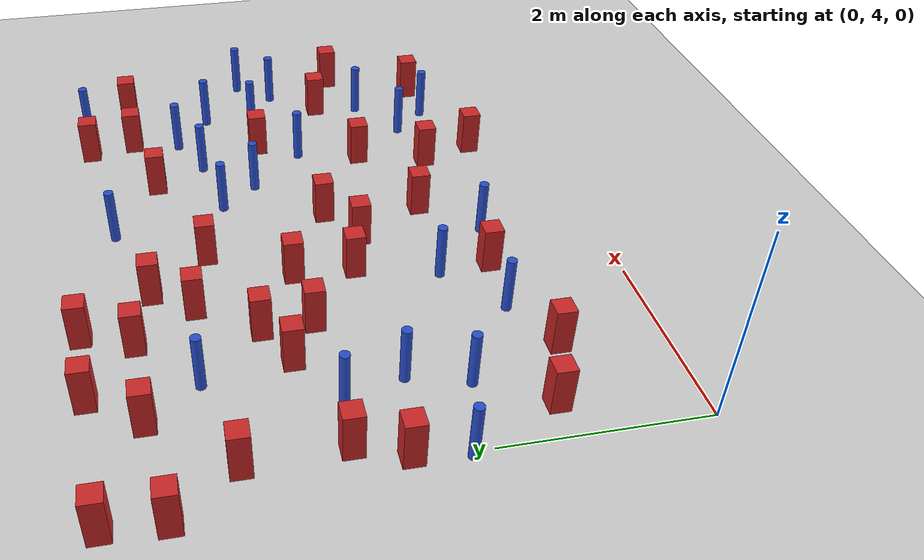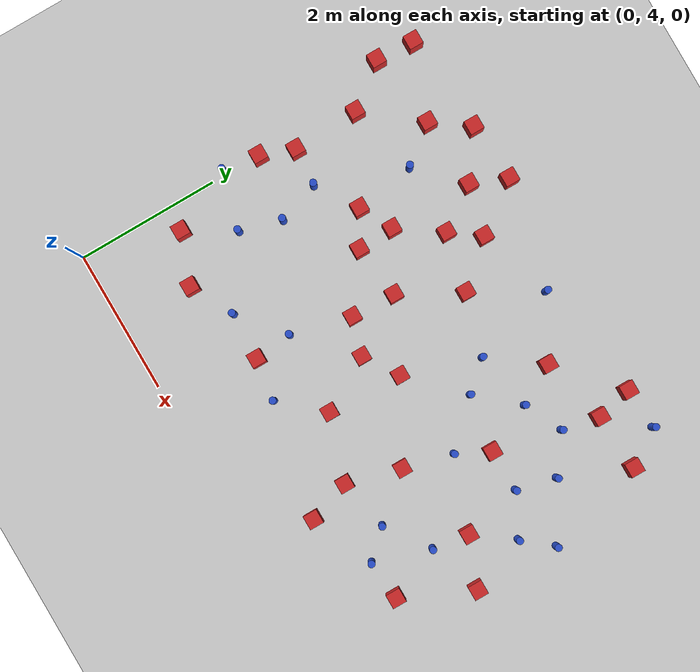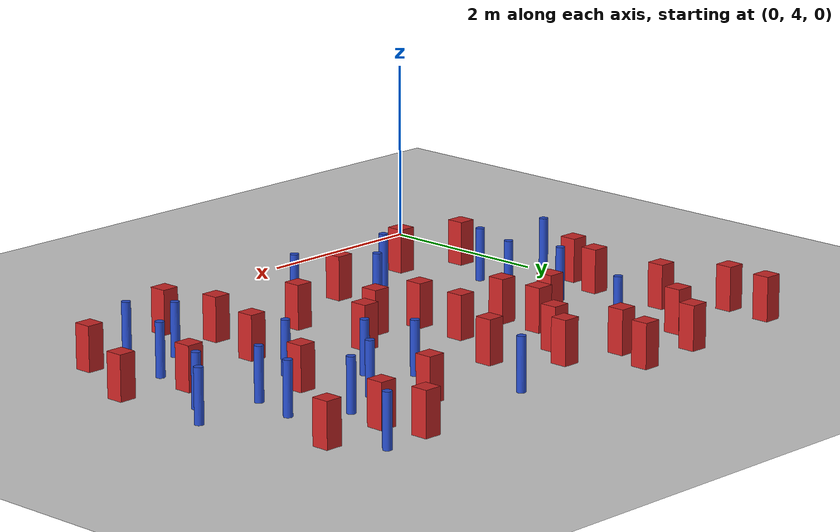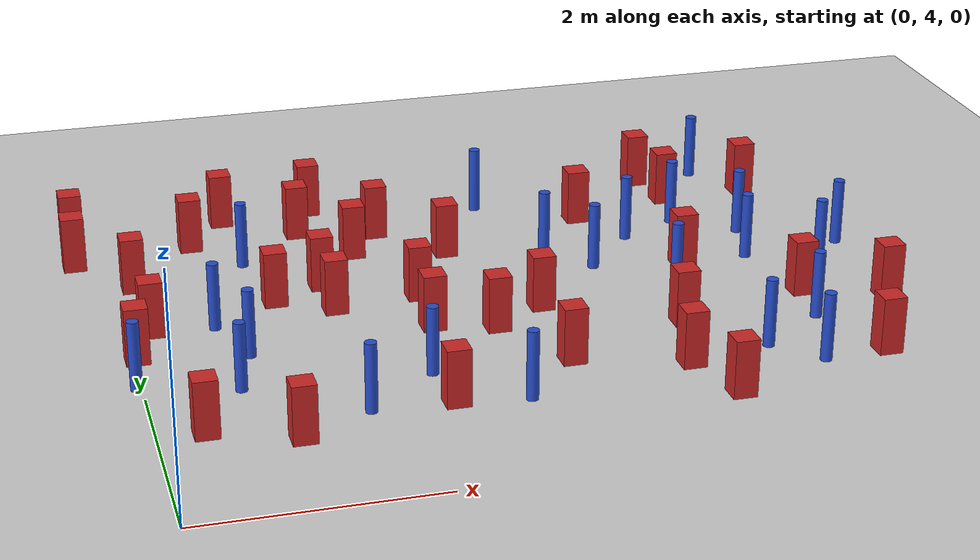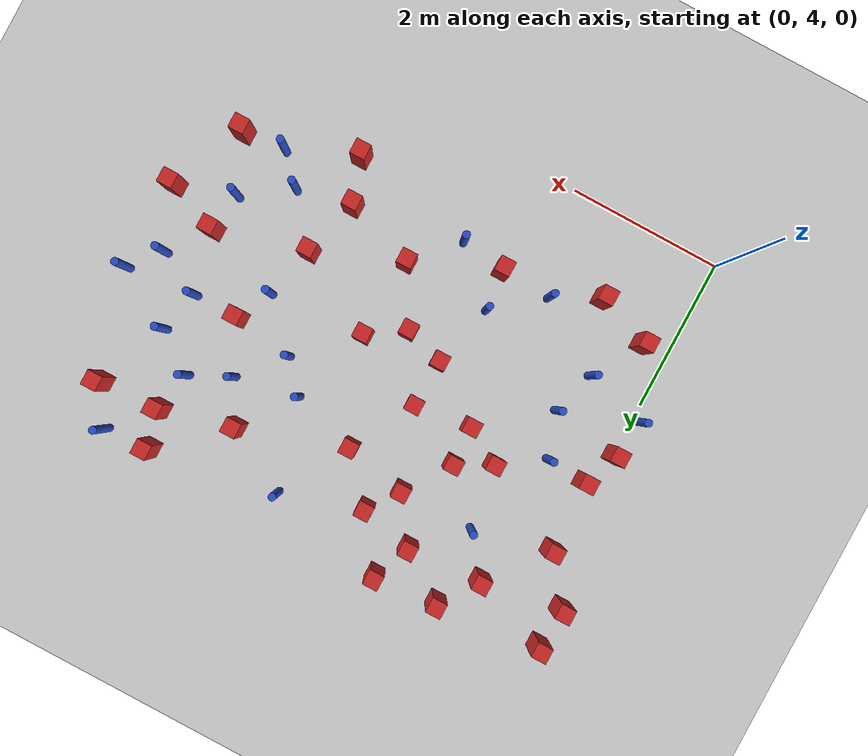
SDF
<sdf version="1.6">
 <world name="default">
  <model name="ground_plane">
   <static>1</static>
   <link name="link">
    <collision name="collision">
     <geometry><plane><normal>0 0 1</normal><size>100 100</size></plane></geometry>
     <surface><friction><ode><mu>100</mu><mu2>50</mu2></ode></friction></surface>
    </collision>
    <visual name="visual">
     <cast_shadows>0</cast_shadows>
     <geometry><plane><normal>0 0 1</normal><size>100 100</size></plane></geometry>
     <material>
      <ambient>1.0 1.0 1.0 1.0</ambient>
      <diffuse>0.8 0.8 0.8 1.0</diffuse>
      <specular>0.01 0.01 0.01 1.000000</specular>
     </material>
    </visual>
   </link>
  </model>
  <model name="square_post_obstacle0">
   <static>true</static>
   <pose>0.162283778039 8.10898161146 8.22691968438e-08 7.22125133819e-06 -7.54495500217e-07 2.29674213826e-05</pose>
   <link name="link">
    <pose>0 0 0.25 0 -0 0</pose>
    <inertial>
     <mass>100</mass>
     <inertia>
      <ixx>0.166667</ixx>
      <ixy>0</ixy>
      <ixz>0</ixz>
      <iyy>0.166667</iyy>
      <iyz>0</iyz>
      <izz>0.166667</izz>
     </inertia>
    </inertial>
    <collision name="collision"><geometry><box><size>.2 .2 .5</size></box></geometry></collision>
    <visual name="visual">
     <geometry><box><size>.2 .2 .5</size></box></geometry>
     <material>
      <script><name>Gazebo/Red</name><uri>file://media/materials/scripts/gazebo.material</uri></script>
     </material>
    </visual>
   </link>
  </model>
  <model name="pole_obstacle7">
   <static>true</static>
   <pose>0.757397420686 5.97443957552 2.88873142074e-08 -9.90536689661e-09 4.60219948993e-07 -1.20965994957e-07</pose>
   <link name="link">
    <pose>0 0 0.3 0 -0 0</pose>
    <inertial>
     <mass>1</mass>
     <inertia><ixx>0.145833</ixx><ixy>0</ixy><ixz>0</ixz><iyy>0.145833</iyy><iyz>0</iyz><izz>0.125</izz></inertia>
    </inertial>
    <collision name="collision">
     <geometry><cylinder><radius>0.05</radius><length>.6</length></cylinder></geometry>
    </collision>
    <visual name="visual">
     <geometry><cylinder><radius>0.05</radius><length>.6</length></cylinder></geometry>
     <material>
      <script><name>Gazebo/Blue</name><uri>file://media/materials/scripts/gazebo.material</uri></script>
     </material>
    </visual>
   </link>
  </model>
  <model name="square_post_obstacle20">
   <static>true</static>
   <pose>-0.256552599961 9.23690297356 8.22691968438e-08 7.22125133819e-06 -7.54495500217e-07 2.29674213826e-05</pose>
   <link name="link">
    <pose>0 0 0.25 0 -0 0</pose>
    <inertial>
     <mass>100</mass>
     <inertia>
      <ixx>0.166667</ixx>
      <ixy>0</ixy>
      <ixz>0</ixz>
      <iyy>0.166667</iyy>
      <iyz>0</iyz>
      <izz>0.166667</izz>
     </inertia>
    </inertial>
    <collision name="collision"><geometry><box><size>.2 .2 .5</size></box></geometry></collision>
    <visual name="visual">
     <geometry><box><size>.2 .2 .5</size></box></geometry>
     <material>
      <script><name>Gazebo/Red</name><uri>file://media/materials/scripts/gazebo.material</uri></script>
     </material>
    </visual>
   </link>
  </model>
  <model name="square_post_obstacle26">
   <static>true</static>
   <pose>0.76789544619 8.86330595334 8.22691968438e-08 7.22125133819e-06 -7.54495500217e-07 2.29674213826e-05</pose>
   <link name="link">
    <pose>0 0 0.25 0 -0 0</pose>
    <inertial>
     <mass>100</mass>
     <inertia>
      <ixx>0.166667</ixx>
      <ixy>0</ixy>
      <ixz>0</ixz>
      <iyy>0.166667</iyy>
      <iyz>0</iyz>
      <izz>0.166667</izz>
     </inertia>
    </inertial>
    <collision name="collision"><geometry><box><size>.2 .2 .5</size></box></geometry></collision>
    <visual name="visual">
     <geometry><box><size>.2 .2 .5</size></box></geometry>
     <material>
      <script><name>Gazebo/Red</name><uri>file://media/materials/scripts/gazebo.material</uri></script>
     </material>
    </visual>
   </link>
  </model>
  <model name="square_post_obstacle29">
   <static>true</static>
   <pose>3.4853978365 6.86225372079 8.22691968438e-08 7.2212513382e-06 -7.54495500217e-07 2.29674213826e-05</pose>
   <link name="link">
    <pose>0 0 0.25 0 -0 0</pose>
    <inertial>
     <mass>100</mass>
     <inertia>
      <ixx>0.166667</ixx>
      <ixy>0</ixy>
      <ixz>0</ixz>
      <iyy>0.166667</iyy>
      <iyz>0</iyz>
      <izz>0.166667</izz>
     </inertia>
    </inertial>
    <collision name="collision"><geometry><box><size>.2 .2 .5</size></box></geometry></collision>
    <visual name="visual">
     <geometry><box><size>.2 .2 .5</size></box></geometry>
     <material>
      <script><name>Gazebo/Red</name><uri>file://media/materials/scripts/gazebo.material</uri></script>
     </material>
    </visual>
   </link>
  </model>
  <model name="pole_obstacle22">
   <static>true</static>
   <pose>6.48088616461 7.51556487156 2.88873142074e-08 -9.90536690842e-09 4.60219948965e-07 -1.20965994976e-07</pose>
   <link name="link">
    <pose>0 0 0.3 0 -0 0</pose>
    <inertial>
     <mass>1</mass>
     <inertia><ixx>0.145833</ixx><ixy>0</ixy><ixz>0</ixz><iyy>0.145833</iyy><iyz>0</iyz><izz>0.125</izz></inertia>
    </inertial>
    <collision name="collision">
     <geometry><cylinder><radius>0.05</radius><length>.6</length></cylinder></geometry>
    </collision>
    <visual name="visual">
     <geometry><cylinder><radius>0.05</radius><length>.6</length></cylinder></geometry>
     <material>
      <script><name>Gazebo/Blue</name><uri>file://media/materials/scripts/gazebo.material</uri></script>
     </material>
    </visual>
   </link>
  </model>
  <model name="pole_obstacle30">
   <static>true</static>
   <pose>4.65475010527 8.09014497869 2.88873142074e-08 -9.9053668967e-09 4.60219948993e-07 -1.20965994957e-07</pose>
   <link name="link">
    <pose>0 0 0.3 0 -0 0</pose>
    <inertial>
     <mass>1</mass>
     <inertia><ixx>0.145833</ixx><ixy>0</ixy><ixz>0</ixz><iyy>0.145833</iyy><iyz>0</iyz><izz>0.125</izz></inertia>
    </inertial>
    <collision name="collision">
     <geometry><cylinder><radius>0.05</radius><length>.6</length></cylinder></geometry>
    </collision>
    <visual name="visual">
     <geometry><cylinder><radius>0.05</radius><length>.6</length></cylinder></geometry>
     <material>
      <script><name>Gazebo/Blue</name><uri>file://media/materials/scripts/gazebo.material</uri></script>
     </material>
    </visual>
   </link>
  </model>
  <model name="square_post_obstacle41">
   <static>true</static>
   <pose>1.12259798906 9.3645433566 8.22691968438e-08 7.22125133819e-06 -7.54495500217e-07 2.29674213826e-05</pose>
   <link name="link">
    <pose>0 0 0.25 0 -0 0</pose>
    <inertial>
     <mass>100</mass>
     <inertia>
      <ixx>0.166667</ixx>
      <ixy>0</ixy>
      <ixz>0</ixz>
      <iyy>0.166667</iyy>
      <iyz>0</iyz>
      <izz>0.166667</izz>
     </inertia>
    </inertial>
    <collision name="collision"><geometry><box><size>.2 .2 .5</size></box></geometry></collision>
    <visual name="visual">
     <geometry><box><size>.2 .2 .5</size></box></geometry>
     <material>
      <script><name>Gazebo/Red</name><uri>file://media/materials/scripts/gazebo.material</uri></script>
     </material>
    </visual>
   </link>
  </model>
  <model name="pole_obstacle46">
   <static>true</static>
   <pose>3.82761383308 7.92443435613 2.88873142074e-08 -9.90536689859e-09 4.60219948989e-07 -1.20965994961e-07</pose>
   <link name="link">
    <pose>0 0 0.3 0 -0 0</pose>
    <inertial>
     <mass>1</mass>
     <inertia><ixx>0.145833</ixx><ixy>0</ixy><ixz>0</ixz><iyy>0.145833</iyy><iyz>0</iyz><izz>0.125</izz></inertia>
    </inertial>
    <collision name="collision">
     <geometry><cylinder><radius>0.05</radius><length>.6</length></cylinder></geometry>
    </collision>
    <visual name="visual">
     <geometry><cylinder><radius>0.05</radius><length>.6</length></cylinder></geometry>
     <material>
      <script><name>Gazebo/Blue</name><uri>file://media/materials/scripts/gazebo.material</uri></script>
     </material>
    </visual>
   </link>
  </model>
  <model name="pole_obstacle47">
   <static>true</static>
   <pose>0.727925221609 7.14160179303 2.88873142074e-08 -9.90536689661e-09 4.60219948993e-07 -1.20965994957e-07</pose>
   <link name="link">
    <pose>0 0 0.3 0 -0 0</pose>
    <inertial>
     <mass>1</mass>
     <inertia><ixx>0.145833</ixx><ixy>0</ixy><ixz>0</ixz><iyy>0.145833</iyy><iyz>0</iyz><izz>0.125</izz></inertia>
    </inertial>
    <collision name="collision">
     <geometry><cylinder><radius>0.05</radius><length>.6</length></cylinder></geometry>
    </collision>
    <visual name="visual">
     <geometry><cylinder><radius>0.05</radius><length>.6</length></cylinder></geometry>
     <material>
      <script><name>Gazebo/Blue</name><uri>file://media/materials/scripts/gazebo.material</uri></script>
     </material>
    </visual>
   </link>
  </model>
  <model name="pole_obstacle50">
   <static>true</static>
   <pose>5.4336771689 5.29448988219 2.88873142074e-08 -9.90536690842e-09 4.60219948965e-07 -1.20965994976e-07</pose>
   <link name="link">
    <pose>0 0 0.3 0 -0 0</pose>
    <inertial>
     <mass>1</mass>
     <inertia><ixx>0.145833</ixx><ixy>0</ixy><ixz>0</ixz><iyy>0.145833</iyy><iyz>0</iyz><izz>0.125</izz></inertia>
    </inertial>
    <collision name="collision">
     <geometry><cylinder><radius>0.05</radius><length>.6</length></cylinder></geometry>
    </collision>
    <visual name="visual">
     <geometry><cylinder><radius>0.05</radius><length>.6</length></cylinder></geometry>
     <material>
      <script><name>Gazebo/Blue</name><uri>file://media/materials/scripts/gazebo.material</uri></script>
     </material>
    </visual>
   </link>
  </model>
  <model name="pole_obstacle51">
   <static>true</static>
   <pose>1.16322253048 8.36214663829 2.88873142074e-08 -9.90536690474e-09 4.60219948974e-07 -1.2096599497e-07</pose>
   <link name="link">
    <pose>0 0 0.3 0 -0 0</pose>
    <inertial>
     <mass>1</mass>
     <inertia><ixx>0.145833</ixx><ixy>0</ixy><ixz>0</ixz><iyy>0.145833</iyy><iyz>0</iyz><izz>0.125</izz></inertia>
    </inertial>
    <collision name="collision">
     <geometry><cylinder><radius>0.05</radius><length>.6</length></cylinder></geometry>
    </collision>
    <visual name="visual">
     <geometry><cylinder><radius>0.05</radius><length>.6</length></cylinder></geometry>
     <material>
      <script><name>Gazebo/Blue</name><uri>file://media/materials/scripts/gazebo.material</uri></script>
     </material>
    </visual>
   </link>
  </model>
  <model name="pole_obstacle52">
   <static>true</static>
   <pose>5.18245828493 8.34725905334 2.88873142074e-08 -9.9053668967e-09 4.60219948993e-07 -1.20965994957e-07</pose>
   <link name="link">
    <pose>0 0 0.3 0 -0 0</pose>
    <inertial>
     <mass>1</mass>
     <inertia><ixx>0.145833</ixx><ixy>0</ixy><ixz>0</ixz><iyy>0.145833</iyy><iyz>0</iyz><izz>0.125</izz></inertia>
    </inertial>
    <collision name="collision">
     <geometry><cylinder><radius>0.05</radius><length>.6</length></cylinder></geometry>
    </collision>
    <visual name="visual">
     <geometry><cylinder><radius>0.05</radius><length>.6</length></cylinder></geometry>
     <material>
      <script><name>Gazebo/Blue</name><uri>file://media/materials/scripts/gazebo.material</uri></script>
     </material>
    </visual>
   </link>
  </model>
  <model name="square_post_obstacle61">
   <static>true</static>
   <pose>1.95289120962 9.42673131361 8.22691968438e-08 7.22125133819e-06 -7.54495500217e-07 2.29674213826e-05</pose>
   <link name="link">
    <pose>0 0 0.25 0 -0 0</pose>
    <inertial>
     <mass>100</mass>
     <inertia>
      <ixx>0.166667</ixx>
      <ixy>0</ixy>
      <ixz>0</ixz>
      <iyy>0.166667</iyy>
      <iyz>0</iyz>
      <izz>0.166667</izz>
     </inertia>
    </inertial>
    <collision name="collision"><geometry><box><size>.2 .2 .5</size></box></geometry></collision>
    <visual name="visual">
     <geometry><box><size>.2 .2 .5</size></box></geometry>
     <material>
      <script><name>Gazebo/Red</name><uri>file://media/materials/scripts/gazebo.material</uri></script>
     </material>
    </visual>
   </link>
  </model>
  <model name="pole_obstacle58">
   <static>true</static>
   <pose>-0.0435866531859 6.19796773189 2.88873142074e-08 -9.90536689643e-09 4.60219948994e-07 -1.20965994959e-07</pose>
   <link name="link">
    <pose>0 0 0.3 0 -0 0</pose>
    <inertial>
     <mass>1</mass>
     <inertia><ixx>0.145833</ixx><ixy>0</ixy><ixz>0</ixz><iyy>0.145833</iyy><iyz>0</iyz><izz>0.125</izz></inertia>
    </inertial>
    <collision name="collision">
     <geometry><cylinder><radius>0.05</radius><length>.6</length></cylinder></geometry>
    </collision>
    <visual name="visual">
     <geometry><cylinder><radius>0.05</radius><length>.6</length></cylinder></geometry>
     <material>
      <script><name>Gazebo/Blue</name><uri>file://media/materials/scripts/gazebo.material</uri></script>
     </material>
    </visual>
   </link>
  </model>
  <model name="square_post_obstacle63">
   <static>true</static>
   <pose>4.56235906794 6.27100671486 8.22691968438e-08 7.2212513382e-06 -7.54495500217e-07 2.29674213826e-05</pose>
   <link name="link">
    <pose>0 0 0.25 0 -0 0</pose>
    <inertial>
     <mass>100</mass>
     <inertia>
      <ixx>0.166667</ixx>
      <ixy>0</ixy>
      <ixz>0</ixz>
      <iyy>0.166667</iyy>
      <iyz>0</iyz>
      <izz>0.166667</izz>
     </inertia>
    </inertial>
    <collision name="collision"><geometry><box><size>.2 .2 .5</size></box></geometry></collision>
    <visual name="visual">
     <geometry><box><size>.2 .2 .5</size></box></geometry>
     <material>
      <script><name>Gazebo/Red</name><uri>file://media/materials/scripts/gazebo.material</uri></script>
     </material>
    </visual>
   </link>
  </model>
  <model name="square_post_obstacle72">
   <static>true</static>
   <pose>0.376257577092 5.31938980522 8.22691968438e-08 7.22125133819e-06 -7.54495500217e-07 2.29674213826e-05</pose>
   <link name="link">
    <pose>0 0 0.25 0 -0 0</pose>
    <inertial>
     <mass>100</mass>
     <inertia>
      <ixx>0.166667</ixx>
      <ixy>0</ixy>
      <ixz>0</ixz>
      <iyy>0.166667</iyy>
      <iyz>0</iyz>
      <izz>0.166667</izz>
     </inertia>
    </inertial>
    <collision name="collision"><geometry><box><size>.2 .2 .5</size></box></geometry></collision>
    <visual name="visual">
     <geometry><box><size>.2 .2 .5</size></box></geometry>
     <material>
      <script><name>Gazebo/Red</name><uri>file://media/materials/scripts/gazebo.material</uri></script>
     </material>
    </visual>
   </link>
  </model>
  <model name="pole_obstacle71">
   <static>true</static>
   <pose>4.74041068815 6.95792141472 2.88873142074e-08 -9.90536690842e-09 4.60219948965e-07 -1.20965994976e-07</pose>
   <link name="link">
    <pose>0 0 0.3 0 -0 0</pose>
    <inertial>
     <mass>1</mass>
     <inertia><ixx>0.145833</ixx><ixy>0</ixy><ixz>0</ixz><iyy>0.145833</iyy><iyz>0</iyz><izz>0.125</izz></inertia>
    </inertial>
    <collision name="collision">
     <geometry><cylinder><radius>0.05</radius><length>.6</length></cylinder></geometry>
    </collision>
    <visual name="visual">
     <geometry><cylinder><radius>0.05</radius><length>.6</length></cylinder></geometry>
     <material>
      <script><name>Gazebo/Blue</name><uri>file://media/materials/scripts/gazebo.material</uri></script>
     </material>
    </visual>
   </link>
  </model>
  <model name="pole_obstacle77">
   <static>true</static>
   <pose>5.75945326988 9.41431579659 2.88873142074e-08 -9.9053668967e-09 4.60219948993e-07 -1.20965994957e-07</pose>
   <link name="link">
    <pose>0 0 0.3 0 -0 0</pose>
    <inertial>
     <mass>1</mass>
     <inertia><ixx>0.145833</ixx><ixy>0</ixy><ixz>0</ixz><iyy>0.145833</iyy><iyz>0</iyz><izz>0.125</izz></inertia>
    </inertial>
    <collision name="collision">
     <geometry><cylinder><radius>0.05</radius><length>.6</length></cylinder></geometry>
    </collision>
    <visual name="visual">
     <geometry><cylinder><radius>0.05</radius><length>.6</length></cylinder></geometry>
     <material>
      <script><name>Gazebo/Blue</name><uri>file://media/materials/scripts/gazebo.material</uri></script>
     </material>
    </visual>
   </link>
  </model>
  <model name="square_post_obstacle77">
   <static>true</static>
   <pose>2.96867325076 8.17074979924 8.22691968438e-08 7.22125133819e-06 -7.54495500217e-07 2.29674213826e-05</pose>
   <link name="link">
    <pose>0 0 0.25 0 -0 0</pose>
    <inertial>
     <mass>100</mass>
     <inertia>
      <ixx>0.166667</ixx>
      <ixy>0</ixy>
      <ixz>0</ixz>
      <iyy>0.166667</iyy>
      <iyz>0</iyz>
      <izz>0.166667</izz>
     </inertia>
    </inertial>
    <collision name="collision"><geometry><box><size>.2 .2 .5</size></box></geometry></collision>
    <visual name="visual">
     <geometry><box><size>.2 .2 .5</size></box></geometry>
     <material>
      <script><name>Gazebo/Red</name><uri>file://media/materials/scripts/gazebo.material</uri></script>
     </material>
    </visual>
   </link>
  </model>
  <model name="pole_obstacle83">
   <static>true</static>
   <pose>2.28597338293 5.86817106889 2.88873142074e-08 -9.90536689859e-09 4.60219948989e-07 -1.20965994961e-07</pose>
   <link name="link">
    <pose>0 0 0.3 0 -0 0</pose>
    <inertial>
     <mass>1</mass>
     <inertia><ixx>0.145833</ixx><ixy>0</ixy><ixz>0</ixz><iyy>0.145833</iyy><iyz>0</iyz><izz>0.125</izz></inertia>
    </inertial>
    <collision name="collision">
     <geometry><cylinder><radius>0.05</radius><length>.6</length></cylinder></geometry>
    </collision>
    <visual name="visual">
     <geometry><cylinder><radius>0.05</radius><length>.6</length></cylinder></geometry>
     <material>
      <script><name>Gazebo/Blue</name><uri>file://media/materials/scripts/gazebo.material</uri></script>
     </material>
    </visual>
   </link>
  </model>
  <model name="square_post_obstacle81">
   <static>true</static>
   <pose>1.07721218713 5.05495801115 8.22691968438e-08 7.2212513382e-06 -7.54495500217e-07 2.29674213826e-05</pose>
   <link name="link">
    <pose>0 0 0.25 0 -0 0</pose>
    <inertial>
     <mass>100</mass>
     <inertia>
      <ixx>0.166667</ixx>
      <ixy>0</ixy>
      <ixz>0</ixz>
      <iyy>0.166667</iyy>
      <iyz>0</iyz>
      <izz>0.166667</izz>
     </inertia>
    </inertial>
    <collision name="collision"><geometry><box><size>.2 .2 .5</size></box></geometry></collision>
    <visual name="visual">
     <geometry><box><size>.2 .2 .5</size></box></geometry>
     <material>
      <script><name>Gazebo/Red</name><uri>file://media/materials/scripts/gazebo.material</uri></script>
     </material>
    </visual>
   </link>
  </model>
  <model name="pole_obstacle90">
   <static>true</static>
   <pose>2.93490335544 5.24682398478 2.88873142074e-08 -9.90536689859e-09 4.60219948989e-07 -1.20965994961e-07</pose>
   <link name="link">
    <pose>0 0 0.3 0 -0 0</pose>
    <inertial>
     <mass>1</mass>
     <inertia><ixx>0.145833</ixx><ixy>0</ixy><ixz>0</ixz><iyy>0.145833</iyy><iyz>0</iyz><izz>0.125</izz></inertia>
    </inertial>
    <collision name="collision">
     <geometry><cylinder><radius>0.05</radius><length>.6</length></cylinder></geometry>
    </collision>
    <visual name="visual">
     <geometry><cylinder><radius>0.05</radius><length>.6</length></cylinder></geometry>
     <material>
      <script><name>Gazebo/Blue</name><uri>file://media/materials/scripts/gazebo.material</uri></script>
     </material>
    </visual>
   </link>
  </model>
  <model name="square_post_obstacle94">
   <static>true</static>
   <pose>0.201381671887 7.17721379972 8.22691968438e-08 7.2212513382e-06 -7.54495500217e-07 2.29674213826e-05</pose>
   <link name="link">
    <pose>0 0 0.25 0 -0 0</pose>
    <inertial>
     <mass>100</mass>
     <inertia>
      <ixx>0.166667</ixx>
      <ixy>0</ixy>
      <ixz>0</ixz>
      <iyy>0.166667</iyy>
      <iyz>0</iyz>
      <izz>0.166667</izz>
     </inertia>
    </inertial>
    <collision name="collision"><geometry><box><size>.2 .2 .5</size></box></geometry></collision>
    <visual name="visual">
     <geometry><box><size>.2 .2 .5</size></box></geometry>
     <material>
      <script><name>Gazebo/Red</name><uri>file://media/materials/scripts/gazebo.material</uri></script>
     </material>
    </visual>
   </link>
  </model>
  <model name="pole_obstacle107">
   <static>true</static>
   <pose>5.56460161546 7.4199643332 2.88873142074e-08 -9.90536690842e-09 4.60219948965e-07 -1.20965994976e-07</pose>
   <link name="link">
    <pose>0 0 0.3 0 -0 0</pose>
    <inertial>
     <mass>1</mass>
     <inertia><ixx>0.145833</ixx><ixy>0</ixy><ixz>0</ixz><iyy>0.145833</iyy><iyz>0</iyz><izz>0.125</izz></inertia>
    </inertial>
    <collision name="collision">
     <geometry><cylinder><radius>0.05</radius><length>.6</length></cylinder></geometry>
    </collision>
    <visual name="visual">
     <geometry><cylinder><radius>0.05</radius><length>.6</length></cylinder></geometry>
     <material>
      <script><name>Gazebo/Blue</name><uri>file://media/materials/scripts/gazebo.material</uri></script>
     </material>
    </visual>
   </link>
  </model>
  <model name="pole_obstacle110">
   <static>true</static>
   <pose>5.08272865546 5.66126780666 2.88873142074e-08 -9.90536690842e-09 4.60219948965e-07 -1.20965994976e-07</pose>
   <link name="link">
    <pose>0 0 0.3 0 -0 0</pose>
    <inertial>
     <mass>1</mass>
     <inertia><ixx>0.145833</ixx><ixy>0</ixy><ixz>0</ixz><iyy>0.145833</iyy><iyz>0</iyz><izz>0.125</izz></inertia>
    </inertial>
    <collision name="collision">
     <geometry><cylinder><radius>0.05</radius><length>.6</length></cylinder></geometry>
    </collision>
    <visual name="visual">
     <geometry><cylinder><radius>0.05</radius><length>.6</length></cylinder></geometry>
     <material>
      <script><name>Gazebo/Blue</name><uri>file://media/materials/scripts/gazebo.material</uri></script>
     </material>
    </visual>
   </link>
  </model>
  <model name="pole_obstacle111">
   <static>true</static>
   <pose>4.17322458663 7.5391584807 2.88873142074e-08 -9.90536690842e-09 4.60219948965e-07 -1.20965994976e-07</pose>
   <link name="link">
    <pose>0 0 0.3 0 -0 0</pose>
    <inertial>
     <mass>1</mass>
     <inertia><ixx>0.145833</ixx><ixy>0</ixy><ixz>0</ixz><iyy>0.145833</iyy><iyz>0</iyz><izz>0.125</izz></inertia>
    </inertial>
    <collision name="collision">
     <geometry><cylinder><radius>0.05</radius><length>.6</length></cylinder></geometry>
    </collision>
    <visual name="visual">
     <geometry><cylinder><radius>0.05</radius><length>.6</length></cylinder></geometry>
     <material>
      <script><name>Gazebo/Blue</name><uri>file://media/materials/scripts/gazebo.material</uri></script>
     </material>
    </visual>
   </link>
  </model>
  <model name="square_post_obstacle110">
   <static>true</static>
   <pose>-0.287319377816 8.69593210698 8.22691968438e-08 7.22125133819e-06 -7.54495500217e-07 2.29674213826e-05</pose>
   <link name="link">
    <pose>0 0 0.25 0 -0 0</pose>
    <inertial>
     <mass>100</mass>
     <inertia>
      <ixx>0.166667</ixx>
      <ixy>0</ixy>
      <ixz>0</ixz>
      <iyy>0.166667</iyy>
      <iyz>0</iyz>
      <izz>0.166667</izz>
     </inertia>
    </inertial>
    <collision name="collision"><geometry><box><size>.2 .2 .5</size></box></geometry></collision>
    <visual name="visual">
     <geometry><box><size>.2 .2 .5</size></box></geometry>
     <material>
      <script><name>Gazebo/Red</name><uri>file://media/materials/scripts/gazebo.material</uri></script>
     </material>
    </visual>
   </link>
  </model>
  <model name="pole_obstacle129">
   <static>true</static>
   <pose>3.49523625838 9.10108350606 2.88873142074e-08 -9.90536692318e-09 4.6021994893e-07 -1.20965994988e-07</pose>
   <link name="link">
    <pose>0 0 0.3 0 -0 0</pose>
    <inertial>
     <mass>1</mass>
     <inertia><ixx>0.145833</ixx><ixy>0</ixy><ixz>0</ixz><iyy>0.145833</iyy><iyz>0</iyz><izz>0.125</izz></inertia>
    </inertial>
    <collision name="collision">
     <geometry><cylinder><radius>0.05</radius><length>.6</length></cylinder></geometry>
    </collision>
    <visual name="visual">
     <geometry><cylinder><radius>0.05</radius><length>.6</length></cylinder></geometry>
     <material>
      <script><name>Gazebo/Blue</name><uri>file://media/materials/scripts/gazebo.material</uri></script>
     </material>
    </visual>
   </link>
  </model>
  <model name="pole_obstacle130">
   <static>true</static>
   <pose>0.924134991183 6.5564778335 2.88873142074e-08 -9.90536689661e-09 4.60219948993e-07 -1.20965994957e-07</pose>
   <link name="link">
    <pose>0 0 0.3 0 -0 0</pose>
    <inertial>
     <mass>1</mass>
     <inertia><ixx>0.145833</ixx><ixy>0</ixy><ixz>0</ixz><iyy>0.145833</iyy><iyz>0</iyz><izz>0.125</izz></inertia>
    </inertial>
    <collision name="collision">
     <geometry><cylinder><radius>0.05</radius><length>.6</length></cylinder></geometry>
    </collision>
    <visual name="visual">
     <geometry><cylinder><radius>0.05</radius><length>.6</length></cylinder></geometry>
     <material>
      <script><name>Gazebo/Blue</name><uri>file://media/materials/scripts/gazebo.material</uri></script>
     </material>
    </visual>
   </link>
  </model>
  <model name="pole_obstacle142">
   <static>true</static>
   <pose>6.1491749764 7.12307590394 2.88873142074e-08 -9.90536690842e-09 4.60219948965e-07 -1.20965994976e-07</pose>
   <link name="link">
    <pose>0 0 0.3 0 -0 0</pose>
    <inertial>
     <mass>1</mass>
     <inertia><ixx>0.145833</ixx><ixy>0</ixy><ixz>0</ixz><iyy>0.145833</iyy><iyz>0</iyz><izz>0.125</izz></inertia>
    </inertial>
    <collision name="collision">
     <geometry><cylinder><radius>0.05</radius><length>.6</length></cylinder></geometry>
    </collision>
    <visual name="visual">
     <geometry><cylinder><radius>0.05</radius><length>.6</length></cylinder></geometry>
     <material>
      <script><name>Gazebo/Blue</name><uri>file://media/materials/scripts/gazebo.material</uri></script>
     </material>
    </visual>
   </link>
  </model>
  <model name="square_post_obstacle130">
   <static>true</static>
   <pose>5.16857802847 9.36602999264 8.22691968438e-08 7.22125133819e-06 -7.54495500217e-07 2.29674213826e-05</pose>
   <link name="link">
    <pose>0 0 0.25 0 -0 0</pose>
    <inertial>
     <mass>100</mass>
     <inertia>
      <ixx>0.166667</ixx>
      <ixy>0</ixy>
      <ixz>0</ixz>
      <iyy>0.166667</iyy>
      <iyz>0</iyz>
      <izz>0.166667</izz>
     </inertia>
    </inertial>
    <collision name="collision"><geometry><box><size>.2 .2 .5</size></box></geometry></collision>
    <visual name="visual">
     <geometry><box><size>.2 .2 .5</size></box></geometry>
     <material>
      <script><name>Gazebo/Red</name><uri>file://media/materials/scripts/gazebo.material</uri></script>
     </material>
    </visual>
   </link>
  </model>
  <model name="square_post_obstacle132">
   <static>true</static>
   <pose>5.75273140875 6.59350425713 8.22691968438e-08 7.2212513382e-06 -7.54495500217e-07 2.29674213826e-05</pose>
   <link name="link">
    <pose>0 0 0.25 0 -0 0</pose>
    <inertial>
     <mass>100</mass>
     <inertia>
      <ixx>0.166667</ixx>
      <ixy>0</ixy>
      <ixz>0</ixz>
      <iyy>0.166667</iyy>
      <iyz>0</iyz>
      <izz>0.166667</izz>
     </inertia>
    </inertial>
    <collision name="collision"><geometry><box><size>.2 .2 .5</size></box></geometry></collision>
    <visual name="visual">
     <geometry><box><size>.2 .2 .5</size></box></geometry>
     <material>
      <script><name>Gazebo/Red</name><uri>file://media/materials/scripts/gazebo.material</uri></script>
     </material>
    </visual>
   </link>
  </model>
  <model name="square_post_obstacle134">
   <static>true</static>
   <pose>2.15692500746 8.34528364637 8.22691968438e-08 7.22125133819e-06 -7.54495500217e-07 2.29674213826e-05</pose>
   <link name="link">
    <pose>0 0 0.25 0 -0 0</pose>
    <inertial>
     <mass>100</mass>
     <inertia>
      <ixx>0.166667</ixx>
      <ixy>0</ixy>
      <ixz>0</ixz>
      <iyy>0.166667</iyy>
      <iyz>0</iyz>
      <izz>0.166667</izz>
     </inertia>
    </inertial>
    <collision name="collision"><geometry><box><size>.2 .2 .5</size></box></geometry></collision>
    <visual name="visual">
     <geometry><box><size>.2 .2 .5</size></box></geometry>
     <material>
      <script><name>Gazebo/Red</name><uri>file://media/materials/scripts/gazebo.material</uri></script>
     </material>
    </visual>
   </link>
  </model>
  <model name="pole_obstacle147">
   <static>true</static>
   <pose>5.69948448596 7.97343137087 2.88873142074e-08 -9.90536689847e-09 4.60219948989e-07 -1.2096599496e-07</pose>
   <link name="link">
    <pose>0 0 0.3 0 -0 0</pose>
    <inertial>
     <mass>1</mass>
     <inertia><ixx>0.145833</ixx><ixy>0</ixy><ixz>0</ixz><iyy>0.145833</iyy><iyz>0</iyz><izz>0.125</izz></inertia>
    </inertial>
    <collision name="collision">
     <geometry><cylinder><radius>0.05</radius><length>.6</length></cylinder></geometry>
    </collision>
    <visual name="visual">
     <geometry><cylinder><radius>0.05</radius><length>.6</length></cylinder></geometry>
     <material>
      <script><name>Gazebo/Blue</name><uri>file://media/materials/scripts/gazebo.material</uri></script>
     </material>
    </visual>
   </link>
  </model>
  <model name="square_post_obstacle143">
   <static>true</static>
   <pose>2.51779781376 7.33294909263 8.22691968438e-08 7.2212513382e-06 -7.54495500217e-07 2.29674213826e-05</pose>
   <link name="link">
    <pose>0 0 0.25 0 -0 0</pose>
    <inertial>
     <mass>100</mass>
     <inertia>
      <ixx>0.166667</ixx>
      <ixy>0</ixy>
      <ixz>0</ixz>
      <iyy>0.166667</iyy>
      <iyz>0</iyz>
      <izz>0.166667</izz>
     </inertia>
    </inertial>
    <collision name="collision"><geometry><box><size>.2 .2 .5</size></box></geometry></collision>
    <visual name="visual">
     <geometry><box><size>.2 .2 .5</size></box></geometry>
     <material>
      <script><name>Gazebo/Red</name><uri>file://media/materials/scripts/gazebo.material</uri></script>
     </material>
    </visual>
   </link>
  </model>
  <model name="square_post_obstacle147">
   <static>true</static>
   <pose>1.30060799335 7.51262026973 8.22691968438e-08 7.2212513382e-06 -7.54495500217e-07 2.29674213826e-05</pose>
   <link name="link">
    <pose>0 0 0.25 0 -0 0</pose>
    <inertial>
     <mass>100</mass>
     <inertia>
      <ixx>0.166667</ixx>
      <ixy>0</ixy>
      <ixz>0</ixz>
      <iyy>0.166667</iyy>
      <iyz>0</iyz>
      <izz>0.166667</izz>
     </inertia>
    </inertial>
    <collision name="collision"><geometry><box><size>.2 .2 .5</size></box></geometry></collision>
    <visual name="visual">
     <geometry><box><size>.2 .2 .5</size></box></geometry>
     <material>
      <script><name>Gazebo/Red</name><uri>file://media/materials/scripts/gazebo.material</uri></script>
     </material>
    </visual>
   </link>
  </model>
  <model name="square_post_obstacle150">
   <static>true</static>
   <pose>1.74909479922 7.74888331131 8.22691968438e-08 7.2212513382e-06 -7.54495500217e-07 2.29674213826e-05</pose>
   <link name="link">
    <pose>0 0 0.25 0 -0 0</pose>
    <inertial>
     <mass>100</mass>
     <inertia>
      <ixx>0.166667</ixx>
      <ixy>0</ixy>
      <ixz>0</ixz>
      <iyy>0.166667</iyy>
      <iyz>0</iyz>
      <izz>0.166667</izz>
     </inertia>
    </inertial>
    <collision name="collision"><geometry><box><size>.2 .2 .5</size></box></geometry></collision>
    <visual name="visual">
     <geometry><box><size>.2 .2 .5</size></box></geometry>
     <material>
      <script><name>Gazebo/Red</name><uri>file://media/materials/scripts/gazebo.material</uri></script>
     </material>
    </visual>
   </link>
  </model>
  <model name="square_post_obstacle152">
   <static>true</static>
   <pose>0.0252672473502 6.70850137067 8.22691968438e-08 7.2212513382e-06 -7.54495500217e-07 2.29674213826e-05</pose>
   <link name="link">
    <pose>0 0 0.25 0 -0 0</pose>
    <inertial>
     <mass>100</mass>
     <inertia>
      <ixx>0.166667</ixx>
      <ixy>0</ixy>
      <ixz>0</ixz>
      <iyy>0.166667</iyy>
      <iyz>0</iyz>
      <izz>0.166667</izz>
     </inertia>
    </inertial>
    <collision name="collision"><geometry><box><size>.2 .2 .5</size></box></geometry></collision>
    <visual name="visual">
     <geometry><box><size>.2 .2 .5</size></box></geometry>
     <material>
      <script><name>Gazebo/Red</name><uri>file://media/materials/scripts/gazebo.material</uri></script>
     </material>
    </visual>
   </link>
  </model>
  <model name="square_post_obstacle160">
   <static>true</static>
   <pose>2.44810172628 8.75223096669 8.22691968438e-08 7.22125133819e-06 -7.54495500217e-07 2.29674213826e-05</pose>
   <link name="link">
    <pose>0 0 0.25 0 -0 0</pose>
    <inertial>
     <mass>100</mass>
     <inertia>
      <ixx>0.166667</ixx>
      <ixy>0</ixy>
      <ixz>0</ixz>
      <iyy>0.166667</iyy>
      <iyz>0</iyz>
      <izz>0.166667</izz>
     </inertia>
    </inertial>
    <collision name="collision"><geometry><box><size>.2 .2 .5</size></box></geometry></collision>
    <visual name="visual">
     <geometry><box><size>.2 .2 .5</size></box></geometry>
     <material>
      <script><name>Gazebo/Red</name><uri>file://media/materials/scripts/gazebo.material</uri></script>
     </material>
    </visual>
   </link>
  </model>
  <model name="square_post_obstacle163">
   <static>true</static>
   <pose>1.77122684512 7.23977061127 8.22691968438e-08 7.2212513382e-06 -7.54495500217e-07 2.29674213826e-05</pose>
   <link name="link">
    <pose>0 0 0.25 0 -0 0</pose>
    <inertial>
     <mass>100</mass>
     <inertia>
      <ixx>0.166667</ixx>
      <ixy>0</ixy>
      <ixz>0</ixz>
      <iyy>0.166667</iyy>
      <iyz>0</iyz>
      <izz>0.166667</izz>
     </inertia>
    </inertial>
    <collision name="collision"><geometry><box><size>.2 .2 .5</size></box></geometry></collision>
    <visual name="visual">
     <geometry><box><size>.2 .2 .5</size></box></geometry>
     <material>
      <script><name>Gazebo/Red</name><uri>file://media/materials/scripts/gazebo.material</uri></script>
     </material>
    </visual>
   </link>
  </model>
  <model name="pole_obstacle174">
   <static>true</static>
   <pose>5.68188942217 6.08276890312 2.88873142074e-08 -9.90536690842e-09 4.60219948965e-07 -1.20965994976e-07</pose>
   <link name="link">
    <pose>0 0 0.3 0 -0 0</pose>
    <inertial>
     <mass>1</mass>
     <inertia><ixx>0.145833</ixx><ixy>0</ixy><ixz>0</ixz><iyy>0.145833</iyy><iyz>0</iyz><izz>0.125</izz></inertia>
    </inertial>
    <collision name="collision">
     <geometry><cylinder><radius>0.05</radius><length>.6</length></cylinder></geometry>
    </collision>
    <visual name="visual">
     <geometry><cylinder><radius>0.05</radius><length>.6</length></cylinder></geometry>
     <material>
      <script><name>Gazebo/Blue</name><uri>file://media/materials/scripts/gazebo.material</uri></script>
     </material>
    </visual>
   </link>
  </model>
  <model name="square_post_obstacle169">
   <static>true</static>
   <pose>2.34383583684 5.33629566492 8.22691968438e-08 7.2212513382e-06 -7.54495500217e-07 2.29674213826e-05</pose>
   <link name="link">
    <pose>0 0 0.25 0 -0 0</pose>
    <inertial>
     <mass>100</mass>
     <inertia>
      <ixx>0.166667</ixx>
      <ixy>0</ixy>
      <ixz>0</ixz>
      <iyy>0.166667</iyy>
      <iyz>0</iyz>
      <izz>0.166667</izz>
     </inertia>
    </inertial>
    <collision name="collision"><geometry><box><size>.2 .2 .5</size></box></geometry></collision>
    <visual name="visual">
     <geometry><box><size>.2 .2 .5</size></box></geometry>
     <material>
      <script><name>Gazebo/Red</name><uri>file://media/materials/scripts/gazebo.material</uri></script>
     </material>
    </visual>
   </link>
  </model>
  <model name="square_post_obstacle173">
   <static>true</static>
   <pose>5.99062353885 5.34359747472 8.22691968438e-08 7.2212513382e-06 -7.54495500217e-07 2.29674213826e-05</pose>
   <link name="link">
    <pose>0 0 0.25 0 -0 0</pose>
    <inertial>
     <mass>100</mass>
     <inertia>
      <ixx>0.166667</ixx>
      <ixy>0</ixy>
      <ixz>0</ixz>
      <iyy>0.166667</iyy>
      <iyz>0</iyz>
      <izz>0.166667</izz>
     </inertia>
    </inertial>
    <collision name="collision"><geometry><box><size>.2 .2 .5</size></box></geometry></collision>
    <visual name="visual">
     <geometry><box><size>.2 .2 .5</size></box></geometry>
     <material>
      <script><name>Gazebo/Red</name><uri>file://media/materials/scripts/gazebo.material</uri></script>
     </material>
    </visual>
   </link>
  </model>
  <model name="square_post_obstacle175">
   <static>true</static>
   <pose>4.3558592492 5.51198269496 8.22691968438e-08 7.2212513382e-06 -7.54495500217e-07 2.29674213826e-05</pose>
   <link name="link">
    <pose>0 0 0.25 0 -0 0</pose>
    <inertial>
     <mass>100</mass>
     <inertia>
      <ixx>0.166667</ixx>
      <ixy>0</ixy>
      <ixz>0</ixz>
      <iyy>0.166667</iyy>
      <iyz>0</iyz>
      <izz>0.166667</izz>
     </inertia>
    </inertial>
    <collision name="collision"><geometry><box><size>.2 .2 .5</size></box></geometry></collision>
    <visual name="visual">
     <geometry><box><size>.2 .2 .5</size></box></geometry>
     <material>
      <script><name>Gazebo/Red</name><uri>file://media/materials/scripts/gazebo.material</uri></script>
     </material>
    </visual>
   </link>
  </model>
  <model name="square_post_obstacle182">
   <static>true</static>
   <pose>5.28525779899 8.87010805088 8.22691968438e-08 7.22125133819e-06 -7.54495500217e-07 2.29674213826e-05</pose>
   <link name="link">
    <pose>0 0 0.25 0 -0 0</pose>
    <inertial>
     <mass>100</mass>
     <inertia>
      <ixx>0.166667</ixx>
      <ixy>0</ixy>
      <ixz>0</ixz>
      <iyy>0.166667</iyy>
      <iyz>0</iyz>
      <izz>0.166667</izz>
     </inertia>
    </inertial>
    <collision name="collision"><geometry><box><size>.2 .2 .5</size></box></geometry></collision>
    <visual name="visual">
     <geometry><box><size>.2 .2 .5</size></box></geometry>
     <material>
      <script><name>Gazebo/Red</name><uri>file://media/materials/scripts/gazebo.material</uri></script>
     </material>
    </visual>
   </link>
  </model>
  <model name="square_post_obstacle184">
   <static>true</static>
   <pose>1.75071479765 8.9246713844 8.22691968438e-08 7.22125133819e-06 -7.54495500217e-07 2.29674213826e-05</pose>
   <link name="link">
    <pose>0 0 0.25 0 -0 0</pose>
    <inertial>
     <mass>100</mass>
     <inertia>
      <ixx>0.166667</ixx>
      <ixy>0</ixy>
      <ixz>0</ixz>
      <iyy>0.166667</iyy>
      <iyz>0</iyz>
      <izz>0.166667</izz>
     </inertia>
    </inertial>
    <collision name="collision"><geometry><box><size>.2 .2 .5</size></box></geometry></collision>
    <visual name="visual">
     <geometry><box><size>.2 .2 .5</size></box></geometry>
     <material>
      <script><name>Gazebo/Red</name><uri>file://media/materials/scripts/gazebo.material</uri></script>
     </material>
    </visual>
   </link>
  </model>
  <model name="square_post_obstacle193">
   <static>true</static>
   <pose>2.49638220326 6.71236644583 8.22691968438e-08 7.2212513382e-06 -7.54495500217e-07 2.29674213826e-05</pose>
   <link name="link">
    <pose>0 0 0.25 0 -0 0</pose>
    <inertial>
     <mass>100</mass>
     <inertia>
      <ixx>0.166667</ixx>
      <ixy>0</ixy>
      <ixz>0</ixz>
      <iyy>0.166667</iyy>
      <iyz>0</iyz>
      <izz>0.166667</izz>
     </inertia>
    </inertial>
    <collision name="collision"><geometry><box><size>.2 .2 .5</size></box></geometry></collision>
    <visual name="visual">
     <geometry><box><size>.2 .2 .5</size></box></geometry>
     <material>
      <script><name>Gazebo/Red</name><uri>file://media/materials/scripts/gazebo.material</uri></script>
     </material>
    </visual>
   </link>
  </model>
  <model name="square_post_obstacle194">
   <static>true</static>
   <pose>4.55322420943 4.92249295505 8.22691968438e-08 7.2212513382e-06 -7.54495500217e-07 2.29674213826e-05</pose>
   <link name="link">
    <pose>0 0 0.25 0 -0 0</pose>
    <inertial>
     <mass>100</mass>
     <inertia>
      <ixx>0.166667</ixx>
      <ixy>0</ixy>
      <ixz>0</ixz>
      <iyy>0.166667</iyy>
      <iyz>0</iyz>
      <izz>0.166667</izz>
     </inertia>
    </inertial>
    <collision name="collision"><geometry><box><size>.2 .2 .5</size></box></geometry></collision>
    <visual name="visual">
     <geometry><box><size>.2 .2 .5</size></box></geometry>
     <material>
      <script><name>Gazebo/Red</name><uri>file://media/materials/scripts/gazebo.material</uri></script>
     </material>
    </visual>
   </link>
  </model>
  <model name="pole_obstacle192">
   <static>true</static>
   <pose>1.671848675 5.3612309737 2.88873142074e-08 -9.90536689852e-09 4.60219948989e-07 -1.2096599496e-07</pose>
   <link name="link">
    <pose>0 0 0.3 0 -0 0</pose>
    <inertial>
     <mass>1</mass>
     <inertia><ixx>0.145833</ixx><ixy>0</ixy><ixz>0</ixz><iyy>0.145833</iyy><iyz>0</iyz><izz>0.125</izz></inertia>
    </inertial>
    <collision name="collision">
     <geometry><cylinder><radius>0.05</radius><length>.6</length></cylinder></geometry>
    </collision>
    <visual name="visual">
     <geometry><cylinder><radius>0.05</radius><length>.6</length></cylinder></geometry>
     <material>
      <script><name>Gazebo/Blue</name><uri>file://media/materials/scripts/gazebo.material</uri></script>
     </material>
    </visual>
   </link>
  </model>
  <model name="square_post_obstacle204">
   <static>true</static>
   <pose>6.43943674593 6.32721820644 8.22691968438e-08 7.2212513382e-06 -7.54495500217e-07 2.29674213826e-05</pose>
   <link name="link">
    <pose>0 0 0.25 0 -0 0</pose>
    <inertial>
     <mass>100</mass>
     <inertia>
      <ixx>0.166667</ixx>
      <ixy>0</ixy>
      <ixz>0</ixz>
      <iyy>0.166667</iyy>
      <iyz>0</iyz>
      <izz>0.166667</izz>
     </inertia>
    </inertial>
    <collision name="collision"><geometry><box><size>.2 .2 .5</size></box></geometry></collision>
    <visual name="visual">
     <geometry><box><size>.2 .2 .5</size></box></geometry>
     <material>
      <script><name>Gazebo/Red</name><uri>file://media/materials/scripts/gazebo.material</uri></script>
     </material>
    </visual>
   </link>
  </model>
  <model name="square_post_obstacle215">
   <static>true</static>
   <pose>4.3407561955 8.62568511029 8.22691968438e-08 7.22125133819e-06 -7.54495500217e-07 2.29674213826e-05</pose>
   <link name="link">
    <pose>0 0 0.25 0 -0 0</pose>
    <inertial>
     <mass>100</mass>
     <inertia>
      <ixx>0.166667</ixx>
      <ixy>0</ixy>
      <ixz>0</ixz>
      <iyy>0.166667</iyy>
      <iyz>0</iyz>
      <izz>0.166667</izz>
     </inertia>
    </inertial>
    <collision name="collision"><geometry><box><size>.2 .2 .5</size></box></geometry></collision>
    <visual name="visual">
     <geometry><box><size>.2 .2 .5</size></box></geometry>
     <material>
      <script><name>Gazebo/Red</name><uri>file://media/materials/scripts/gazebo.material</uri></script>
     </material>
    </visual>
   </link>
  </model>
  <model name="square_post_obstacle222">
   <static>true</static>
   <pose>3.01273300497 6.55337203767 8.22691968438e-08 7.2212513382e-06 -7.54495500217e-07 2.29674213826e-05</pose>
   <link name="link">
    <pose>0 0 0.25 0 -0 0</pose>
    <inertial>
     <mass>100</mass>
     <inertia>
      <ixx>0.166667</ixx>
      <ixy>0</ixy>
      <ixz>0</ixz>
      <iyy>0.166667</iyy>
      <iyz>0</iyz>
      <izz>0.166667</izz>
     </inertia>
    </inertial>
    <collision name="collision"><geometry><box><size>.2 .2 .5</size></box></geometry></collision>
    <visual name="visual">
     <geometry><box><size>.2 .2 .5</size></box></geometry>
     <material>
      <script><name>Gazebo/Red</name><uri>file://media/materials/scripts/gazebo.material</uri></script>
     </material>
    </visual>
   </link>
  </model>
  <model name="square_post_obstacle225">
   <static>true</static>
   <pose>3.43835405066 5.81494310435 8.22691968438e-08 7.2212513382e-06 -7.54495500217e-07 2.29674213826e-05</pose>
   <link name="link">
    <pose>0 0 0.25 0 -0 0</pose>
    <inertial>
     <mass>100</mass>
     <inertia>
      <ixx>0.166667</ixx>
      <ixy>0</ixy>
      <ixz>0</ixz>
      <iyy>0.166667</iyy>
      <iyz>0</iyz>
      <izz>0.166667</izz>
     </inertia>
    </inertial>
    <collision name="collision"><geometry><box><size>.2 .2 .5</size></box></geometry></collision>
    <visual name="visual">
     <geometry><box><size>.2 .2 .5</size></box></geometry>
     <material>
      <script><name>Gazebo/Red</name><uri>file://media/materials/scripts/gazebo.material</uri></script>
     </material>
    </visual>
   </link>
  </model>
  <model name="square_post_obstacle227">
   <static>true</static>
   <pose>6.08680003262 8.91500996466 8.22691968438e-08 7.2212513382e-06 -7.54495500217e-07 2.29674213826e-05</pose>
   <link name="link">
    <pose>0 0 0.25 0 -0 0</pose>
    <inertial>
     <mass>100</mass>
     <inertia>
      <ixx>0.166667</ixx>
      <ixy>0</ixy>
      <ixz>0</ixz>
      <iyy>0.166667</iyy>
      <iyz>0</iyz>
      <izz>0.166667</izz>
     </inertia>
    </inertial>
    <collision name="collision"><geometry><box><size>.2 .2 .5</size></box></geometry></collision>
    <visual name="visual">
     <geometry><box><size>.2 .2 .5</size></box></geometry>
     <material>
      <script><name>Gazebo/Red</name><uri>file://media/materials/scripts/gazebo.material</uri></script>
     </material>
    </visual>
   </link>
  </model>
  <model name="square_post_obstacle245">
   <static>true</static>
   <pose>4.96482003262 7.41229996466 8.22691968438e-08 7.2212513382e-06 -7.54495500217e-07 2.29674213826e-05</pose>
   <link name="link">
    <pose>0 0 0.25 0 -0 0</pose>
    <inertial>
     <mass>100</mass>
     <inertia>
      <ixx>0.166667</ixx>
      <ixy>0</ixy>
      <ixz>0</ixz>
      <iyy>0.166667</iyy>
      <iyz>0</iyz>
      <izz>0.166667</izz>
     </inertia>
    </inertial>
    <collision name="collision"><geometry><box><size>.2 .2 .5</size></box></geometry></collision>
    <visual name="visual">
     <geometry><box><size>.2 .2 .5</size></box></geometry>
     <material>
      <script><name>Gazebo/Red</name><uri>file://media/materials/scripts/gazebo.material</uri></script>
     </material>
    </visual>
   </link>
  </model>
 </world>
</sdf>
